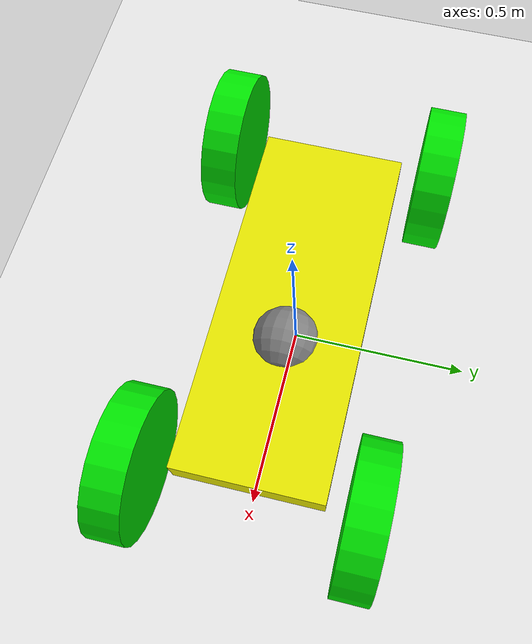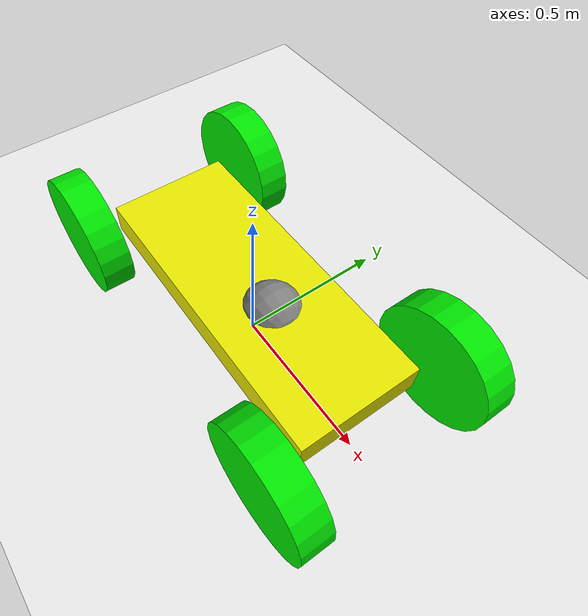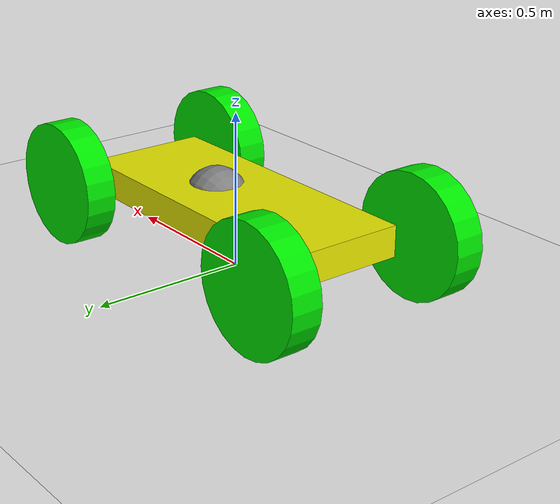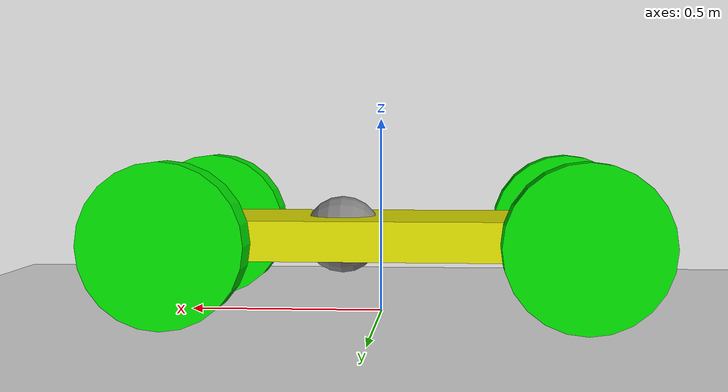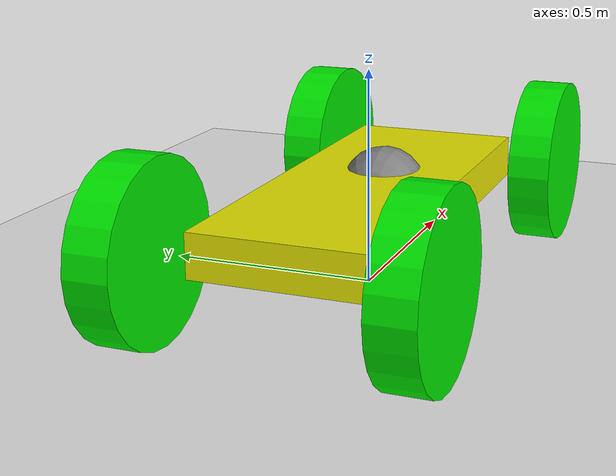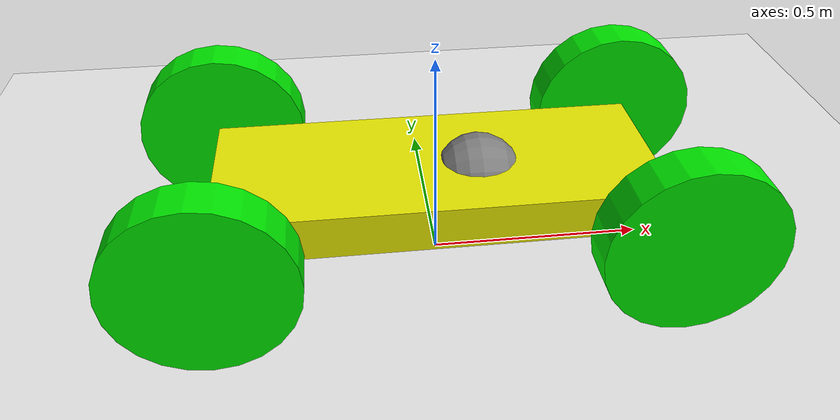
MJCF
<mujoco>
    <option gravity="0 0 -9.81" />
    <worldbody>
        <light diffuse=".5 .5 .5" pos="0 0 3" dir="0 0 -1"/>
        <geom type="plane" size="5 5 0.1" rgba=".9 .9 .9 1"/>
        <body name="chassis" pos="0 0 0.2" euler='0 90 0'>
            <joint type="free"/>
            <geom type="box" size=".05 .2 .5" rgba=".9 .9 0 1"/>
            <site name="marker" pos="0 0 0.1" size="0.1" />

            <!-- Left Front Tire -->
            <body name="left-front-tire" pos="0 0.3 -0.5" euler='90 0 0'>
                <joint name="left-front-wheel" type="hinge" axis="0 0 -1"/>
                <geom type="cylinder" size=".2 0.05" rgba="0 .9 0 1"/>
            </body>

            <!-- Right Front Tire -->
            <body name="right-front-tire" pos="0 -0.3 -0.5" euler='90 0 0'>
                <joint name="right-front-wheel" type="hinge" axis="0 0 -1"/>
                <geom type="cylinder" size=".2 0.05" rgba="0 .9 0 1"/>
            </body>

            <!-- Left Rear Tire -->
            <body name="left-rear-tire" pos="0 -0.3 0.5" euler='90 0 0'>
                <joint name="left-rear-wheel" type="hinge" axis="0 0 -1"/>
                <geom type="cylinder" size=".2 0.05" rgba="0 .9 0 1"/>
            </body>

            <!-- Right Rear Tire -->
            <body name="right-rear-tire" pos="0 0.3 0.5" euler='90 0 0'>
                <joint name="right-rear-wheel" type="hinge" axis="0 0 -1"/>
                <geom type="cylinder" size=".2 0.05" rgba="0 .9 0 1"/>
            </body>

        </body>
    </worldbody>
    <sensor>
        <framepos objtype="site" objname="marker"/>
    </sensor>
    <actuator>
        <velocity name="left-front-velocity-servo" joint="left-front-wheel" kv="100"/>
        <velocity name="right-front-velocity-servo" joint="right-front-wheel" kv="100"/>
        <velocity name="left-rear-velocity-servo" joint="left-rear-wheel" kv="100"/>
        <velocity name="right-rear-velocity-servo" joint="right-rear-wheel" kv="100"/>
    </actuator>
</mujoco>
